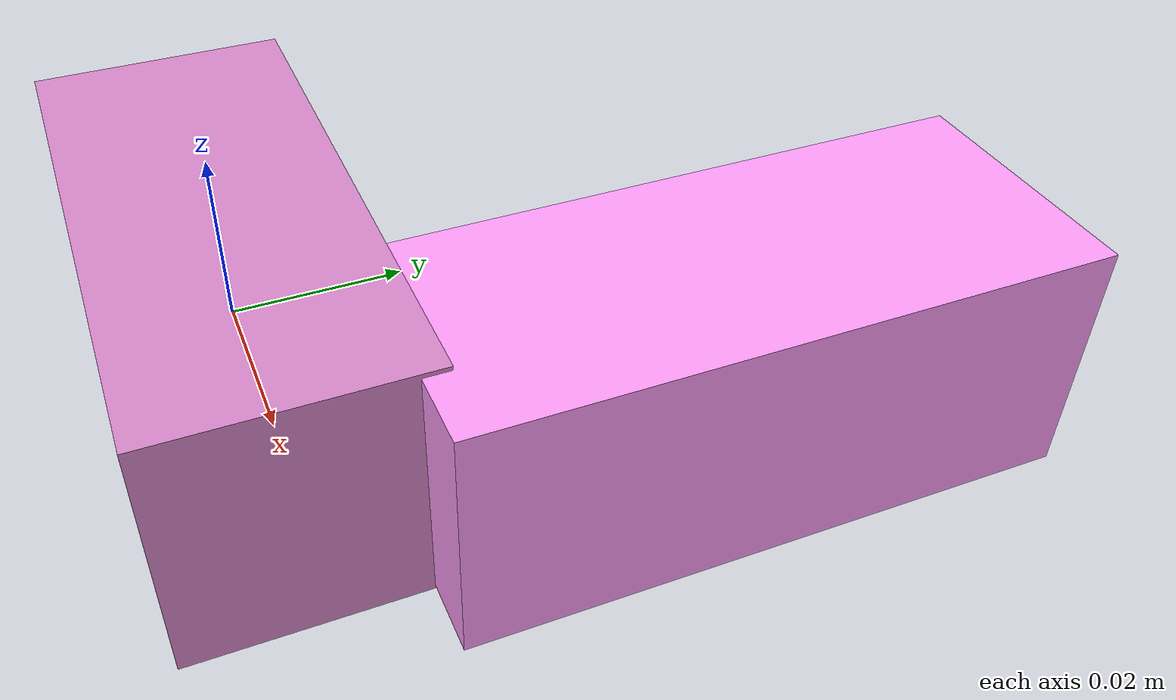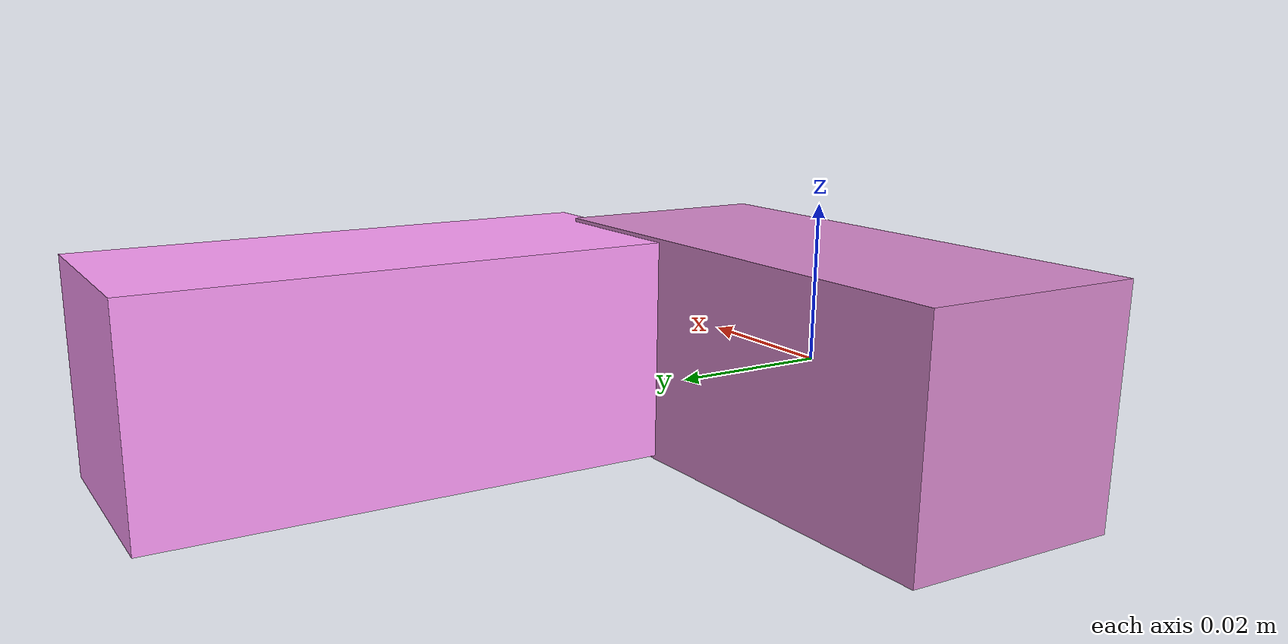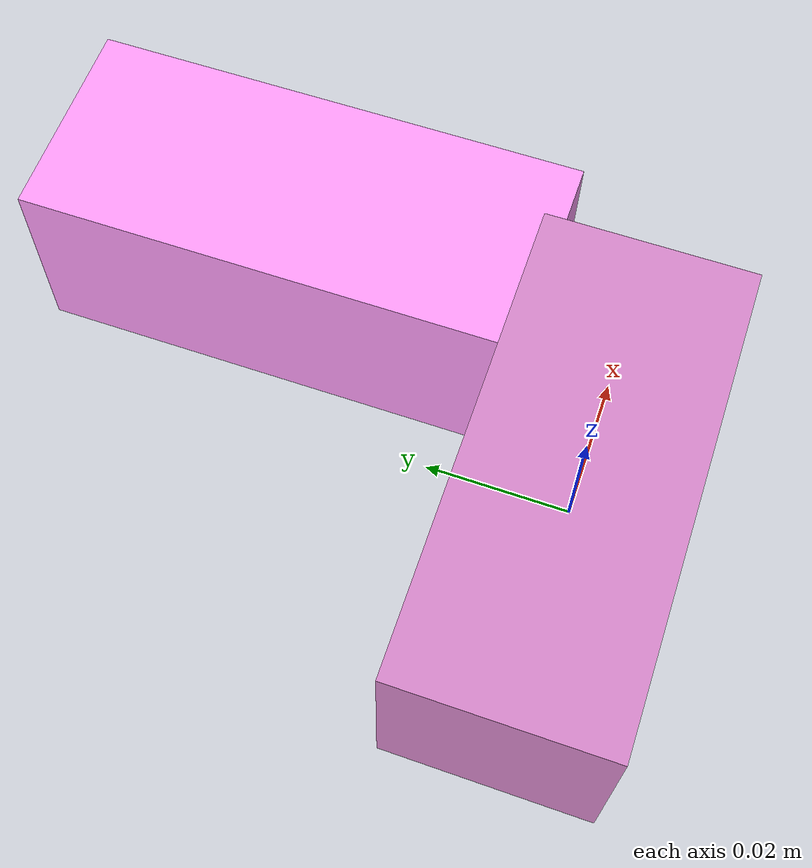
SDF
<sdf version="1.4"><world name="default"><model name="object0"><link name="link1"><pose>0 0 0 0 0 0</pose><inertial><pose>0 0 0 0 0 0</pose><mass>0.037298212384608814</mass><inertia><ixx>5.594731857691322e-06</ixx><ixy>0</ixy><iyy>1.762579988041334e-05</iyy><ixz>0</ixz><iyz>0</iyz><izz>1.762579988041334e-05</izz></inertia></inertial><visual name="link1_visual"><pose>0 0  0 0 0 0</pose><geometry><box><size>0.06907076367520151 0.03 0.03</size></box></geometry><material><diffuse>0.8385544473697366 0.528686544348486 0.7928296949221254 1</diffuse></material></visual><collision><pose>0 0  0 0 0 0</pose><geometry><box><size>0.06907076367520151 0.03 0.03</size></box></geometry></collision></link><link name="link2"><pose>0.02838015183141125 0.047798970022163476 0 0 0 0</pose><inertial><pose>0 0 0 0 0 0</pose><mass>0.03877473592386563</mass><inertia><ixx>1.9377569517523593e-05</ixx><ixy>0</ixy><iyy>5.625567936954171e-06</iyy><ixz>0</ixz><iyz>0</iyz><izz>1.9568211969149264e-05</izz></inertia></inertial><visual name="link2_visual"><pose>0 0  0 0 0 0</pose><geometry><box><size>0.03 0.07180506652567709 0.028999999999999998</size></box></geometry><material><diffuse>0.9946031358824263 0.6113191294340301 0.9718260201658504 1</diffuse></material></visual><collision><pose>0 0  0 0 0 0</pose><geometry><box><size>0.03 0.07180506652567709 0.028999999999999998</size></box></geometry></collision></link><joint name="link_joint_0" type="fixed"><parent>link1</parent><child>link2</child><pose>0 0 0 0 0 0</pose><axis><xyz>0 0 1</xyz></axis></joint></model></world></sdf>
